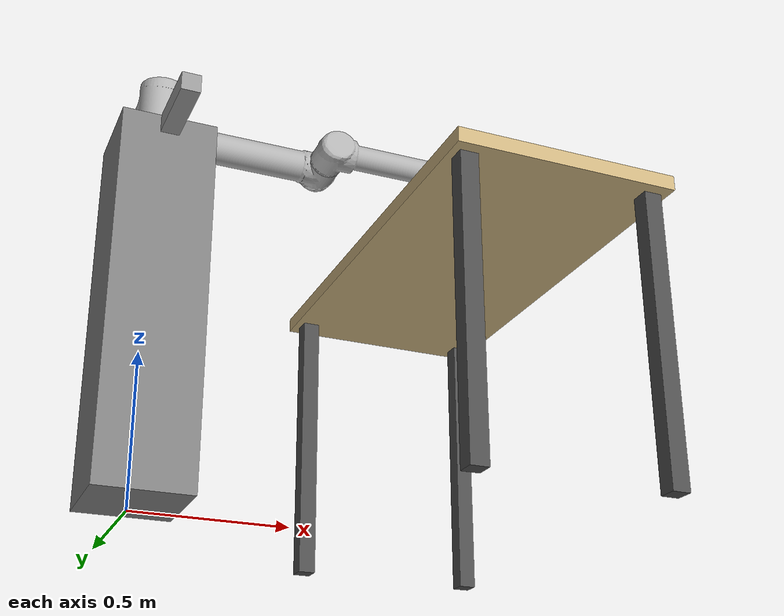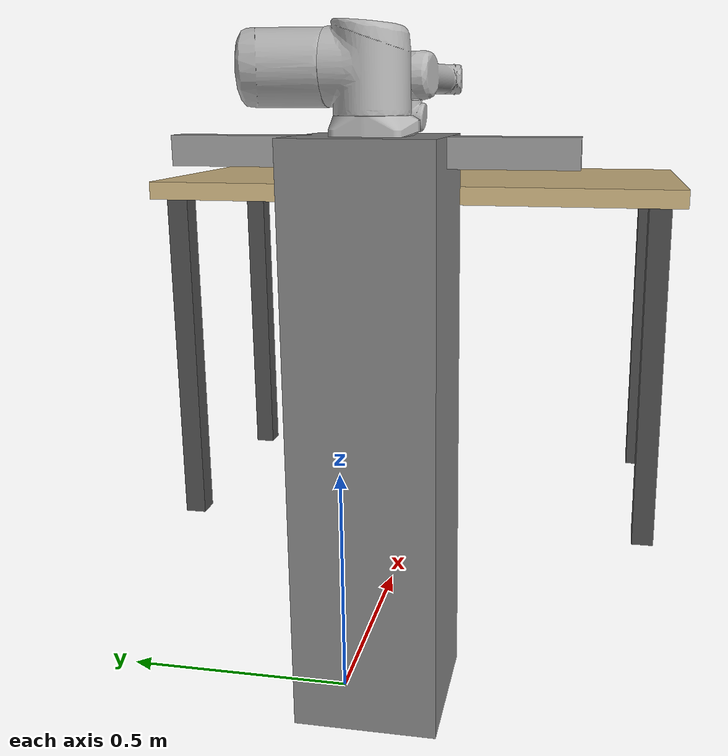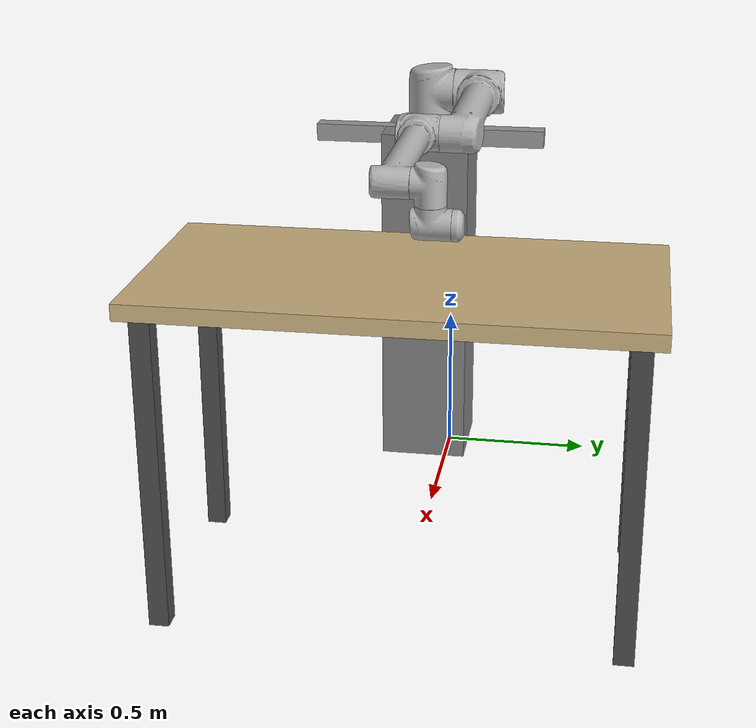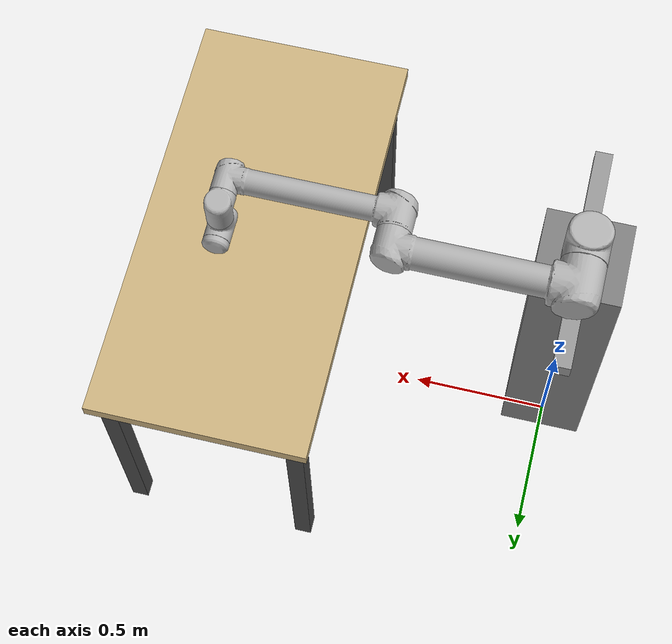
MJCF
<mujoco model="ur10_faps_cell">
  <compiler angle="radian" autolimits="true"/>
  <option integrator="implicitfast" timestep="0.002"/>

  <asset>
    <include file="ur10_assets.xml"/>
  </asset>

  <worldbody>
    <light pos="0 0 3" dir="0 0 -1" diffuse="1 1 1"/>
    <light pos="2 2 2.5" dir="-1 -1 -1" diffuse="0.6 0.6 0.6"/>
    <light pos="-2 2 2.5" dir="1 -1 -1" diffuse="0.6 0.6 0.6"/>

     <!-- Robot mount tower: top surface at Z=1.205m, shifted slightly right (-Y) -->
    <body name="robot_tower" pos="0 -0.08 0.6025">
      <geom name="robot_tower_geom" type="box" size="0.15 0.15 0.6025" rgba="0.5 0.5 0.5 1"/>
      <!-- horizontal crossbar at mounting-plate surface level, rotated to run along Y -->
      <geom name="tower_crossbar" type="box" pos="0 0 0.5725" size="0.03 0.4 0.03" rgba="0.6 0.6 0.6 1"/>
    </body>

    <!-- Working table: tabletop + 4 legs, rotated so 1.5m side runs along Y -->
    <body name="working_table" pos="1.11 0 1.044">
      <!-- tabletop slab, half-extents: X=0.375 Y=0.75 Z=0.025 -->
      <geom name="table_top" type="box" pos="0 0 -0.025" size="0.375 0.75 0.025" rgba="0.8 0.7 0.5 1"/>
      <!-- 4 legs, each leg height = table_top_z (1.044) minus small clearance -->
      <geom name="leg_1" type="box" pos="0.32 0.68 -0.522" size="0.03 0.03 0.497" rgba="0.3 0.3 0.3 1"/>
      <geom name="leg_2" type="box" pos="0.32 -0.68 -0.522" size="0.03 0.03 0.497" rgba="0.3 0.3 0.3 1"/>
      <geom name="leg_3" type="box" pos="-0.32 0.68 -0.522" size="0.03 0.03 0.497" rgba="0.3 0.3 0.3 1"/>
      <geom name="leg_4" type="box" pos="-0.32 -0.68 -0.522" size="0.03 0.03 0.497" rgba="0.3 0.3 0.3 1"/>
    </body>
    <!-- UR10 robot, mounted at the tower's top surface, matching real lab mount point -->
    <body name="ur10_mount" pos="0 -0.08 1.205">
      <include file="ur10_body.xml"/>
    </body>

  </worldbody>
  <actuator>
    <include file="ur10_actuators.xml"/>
  </actuator>

</mujoco>

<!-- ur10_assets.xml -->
<mujoco>
<mesh name="base" content_type="model/stl" file="../assets/meshes/ur10/collision/base.stl"/>
    <mesh name="shoulder" content_type="model/stl" file="../assets/meshes/ur10/collision/shoulder.stl"/>
    <mesh name="upperarm" content_type="model/stl" file="../assets/meshes/ur10/collision/upperarm.stl"/>
    <mesh name="forearm" content_type="model/stl" file="../assets/meshes/ur10/collision/forearm.stl"/>
    <mesh name="wrist1" content_type="model/stl" file="../assets/meshes/ur10/collision/wrist1.stl"/>
    <mesh name="wrist2" content_type="model/stl" file="../assets/meshes/ur10/collision/wrist2.stl"/>
    <mesh name="wrist3" content_type="model/stl" file="../assets/meshes/ur10/collision/wrist3.stl"/>
</mujoco>

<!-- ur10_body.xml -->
<mujoco>
<geom quat="-1 0 0 0" type="mesh" rgba="0.7 0.7 0.7 1" mesh="base"/>
    <body name="shoulder_link" pos="0 0 0.1273" quat="0 0 0 1" gravcomp="1">
      <inertial pos="0.021 -0.027 0" quat="0.988634 -0.000680926 0.148578 -0.0229591" mass="7.1" diaginertia="0.0353866 0.0352903 0.0202532"/>
      <joint name="shoulder_pan_joint" range="-3.14159 3.14159" actuatorfrcrange="-330 330"/>
      <geom quat="0 0 0 1" type="mesh" rgba="0.7 0.7 0.7 1" mesh="shoulder"/>
      <body name="upper_arm_link" quat="0.707107 0.707107 0 0" gravcomp="1">
        <inertial pos="-0.232 0 0.158" quat="0.500033 0.499784 0.489585 0.510381" mass="12.7" diaginertia="0.77068 0.769758 0.0278114"/>
        <joint name="shoulder_lift_joint" range="-3.14159 3.14159" actuatorfrcrange="-330 330"/>
        <geom pos="0 0 0.220941" quat="0.5 0.5 -0.5 -0.5" type="mesh" rgba="0.7 0.7 0.7 1" mesh="upperarm"/>
        <body name="forearm_link" pos="-0.612 0 0" gravcomp="1" >
          <inertial pos="-0.3323 0 0.068" quat="0.492051 0.507971 0.507346 0.492394" mass="4.27" diaginertia="0.30928 0.306743 0.00985709"/>
          <joint name="elbow_joint" range="-6.28319 6.28319" actuatorfrcrange="-150 150"/>
          <geom pos="0 0 0.049042" quat="0.5 0.5 -0.5 -0.5" type="mesh" rgba="0.7 0.7 0.7 1" mesh="forearm"/>
          <body name="wrist_1_link" pos="-0.5723 0 0.163941" gravcomp="1" >
            <inertial pos="0 -0.018 0.007" quat="0.525776 0.850564 -0.0100431 9.45801e-05" mass="2" diaginertia="0.00296017 0.00269992 0.00209991"/>
            <joint name="wrist_1_joint" range="-6.28319 6.28319" actuatorfrcrange="-56 56"/>
            <geom pos="0 0 -0.1149" quat="0.707107 0.707107 0 0" type="mesh" rgba="0.7 0.7 0.7 1" mesh="wrist1"/>
            <body name="wrist_2_link" pos="0 -0.1157 -2.37305e-11" quat="0.707107 0.707107 0 0" gravcomp="1" >
              <inertial pos="0 0.018 -0.007" quat="0.525776 0.850564 -0.0100431 9.45801e-05" mass="2" diaginertia="0.00296017 0.00269992 0.00209991"/>
              <joint name="wrist_2_joint" range="-6.28319 6.28319" actuatorfrcrange="-56 56"/>
              <geom pos="0 0 -0.1158" quat="1 0 0 0" type="mesh" rgba="0.7 0.7 0.7 1" mesh="wrist2"/>
              <body name="wrist_3_link" pos="0 0.0922 -1.89105e-11" quat="0.707107 -0.707107 0 0" gravcomp="1" >
                <inertial pos="0 0 -0.026" quat="0.707107 0 0 0.707107" mass="0.365" diaginertia="0.00041 0.0004 0.00034"/>
                <joint name="wrist_3_joint" range="-6.28319 6.28319" actuatorfrcrange="-56 56"/>
                <geom pos="0 0 -0.0922" quat="0.707107 0.707107 0 0" type="mesh" rgba="0.7 0.7 0.7 1" mesh="wrist3"/>
              </body>
            </body>
          </body>
        </body>
      </body>
    </body>
</mujoco>

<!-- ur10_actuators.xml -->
<mujoco>
<position name="shoulder_pan_actuator" joint="shoulder_pan_joint" kp="2000" kv="200" ctrlrange="-3.14159 3.14159"/>
    <position name="shoulder_lift_actuator" joint="shoulder_lift_joint" kp="2000" kv="200" ctrlrange="-3.14159 3.14159"/>
    <position name="elbow_actuator" joint="elbow_joint" kp="1500" kv="150" ctrlrange="-6.28319 6.28319"/>
    <position name="wrist_1_actuator" joint="wrist_1_joint" kp="150" kv="30" ctrlrange="-6.28319 6.28319"/>
    <position name="wrist_2_actuator" joint="wrist_2_joint" kp="150" kv="30" ctrlrange="-6.28319 6.28319"/>
    <position name="wrist_3_actuator" joint="wrist_3_joint" kp="150" kv="30" ctrlrange="-6.28319 6.28319"/>
</mujoco>
